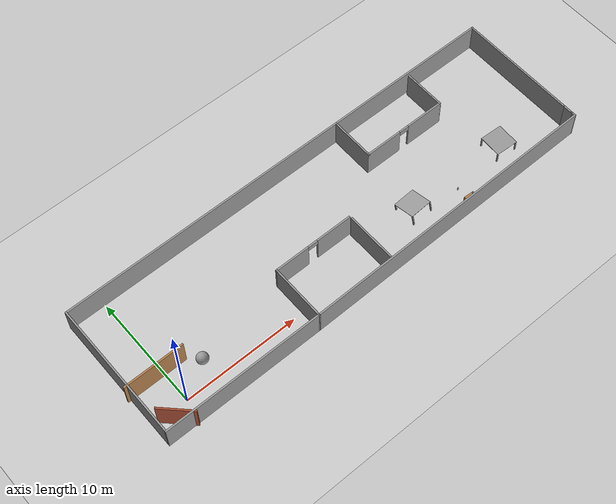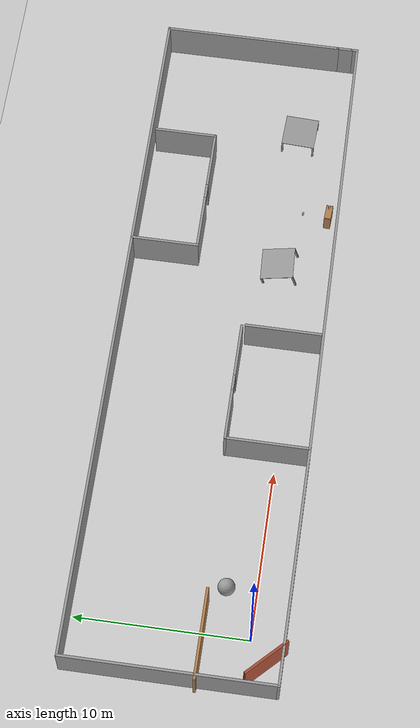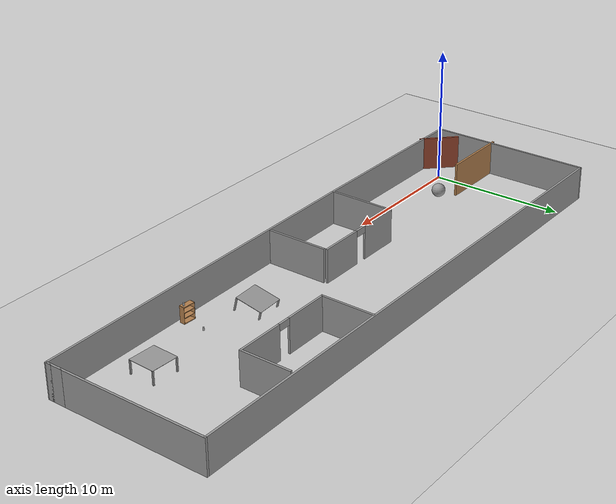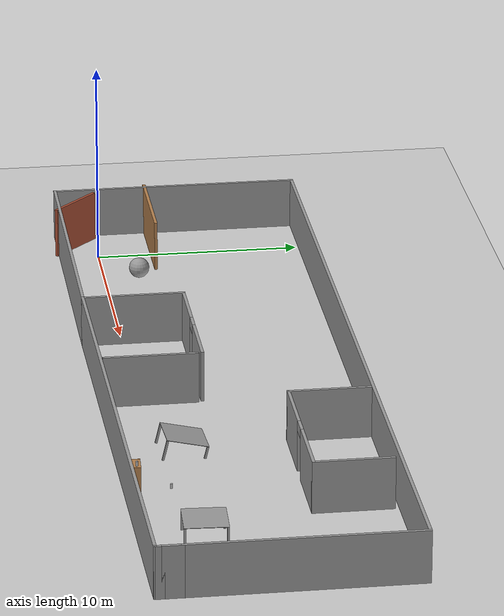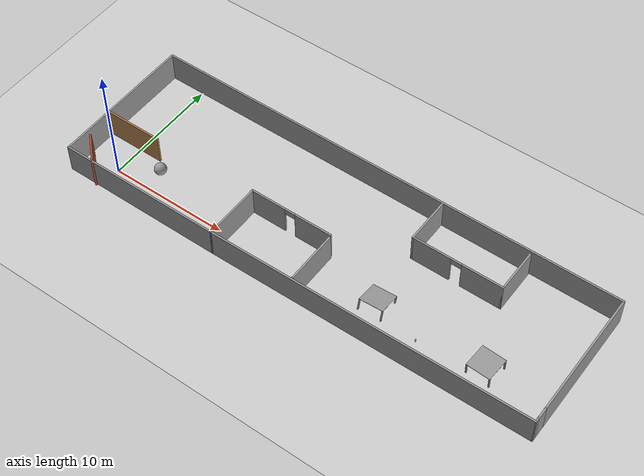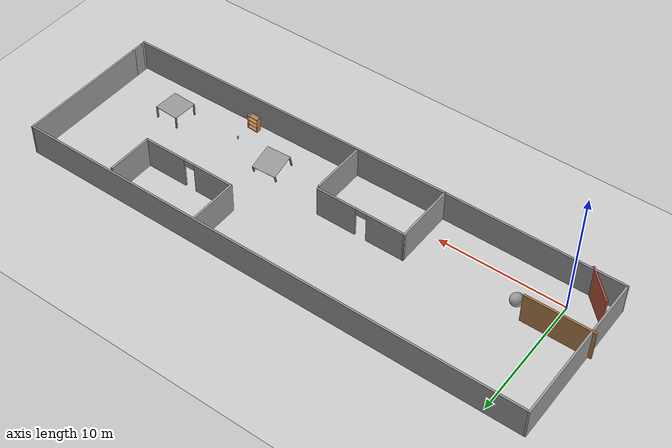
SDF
<sdf version="1.6">
 <world name="default">
  <plugin name="hello" filename="libhello.so"/>
  <light name="sun" type="directional">
   <pose>0 0 10 0 -0 0</pose>
   <diffuse>0.8 0.8 0.8 1</diffuse>
   <specular>0.2 0.2 0.2 1</specular>
   <attenuation>
    <range>1000</range>
    <constant>0.9</constant>
    <linear>0.01</linear>
    <quadratic>0.001</quadratic>
   </attenuation>
   <direction>-0.5 0.1 -0.9</direction>
  </light>
  <model name="ground_plane">
   <static>1</static>
   <link name="link">
    <collision name="collision">
     <geometry><plane><normal>0 0 1</normal><size>100 100</size></plane></geometry>
     <surface>
      <contact><collide_bitmask>65535</collide_bitmask></contact>
      <friction><ode><mu>100</mu><mu2>50</mu2></ode></friction>
     </surface>
    </collision>
    <visual name="visual">
     <cast_shadows>0</cast_shadows>
     <geometry><plane><normal>0 0 1</normal><size>100 100</size></plane></geometry>
     <material>
      <script><uri>file://media/materials/scripts/gazebo.material</uri><name>Gazebo/Grey</name></script>
     </material>
    </visual>
   </link>
  </model>
  <gravity>0 0 -9.8</gravity>
  <magnetic_field>6e-06 2.3e-05 -4.2e-05</magnetic_field>
  <atmosphere type="adiabatic"/>
  <physics name="default_physics" default="0" type="ode">
   <max_step_size>0.001</max_step_size>
   <real_time_factor>1</real_time_factor>
   <real_time_update_rate>1000</real_time_update_rate>
  </physics>
  <scene><ambient>0.4 0.4 0.4 1</ambient><background>0.7 0.7 0.7 1</background><shadows>1</shadows></scene>
  <spherical_coordinates>
   <surface_model>EARTH_WGS84</surface_model>
   <latitude_deg>0</latitude_deg>
   <longitude_deg>0</longitude_deg>
   <elevation>0</elevation>
   <heading_deg>0</heading_deg>
  </spherical_coordinates>
  <model name="house">
   <pose>17.4454 4.16959 0 0 -0 0</pose>
   <link name="Wall_0">
    <collision name="Wall_0_Collision">
     <geometry><box><size>14 0.15 2.5</size></box></geometry>
     <pose>0 0 1.25 0 -0 0</pose>
    </collision>
    <visual name="Wall_0_Visual">
     <pose>0 0 1.25 0 -0 0</pose>
     <geometry><box><size>14 0.15 2.5</size></box></geometry>
     <material>
      <script><uri>file://media/materials/scripts/gazebo.material</uri><name>Gazebo/Grey</name></script>
      <ambient>1 1 1 1</ambient>
     </material>
     <meta><layer>0</layer></meta>
    </visual>
    <pose>-13.5004 -6.04959 0 0 -0 0</pose>
   </link>
   <link name="Wall_1">
    <collision name="Wall_1_Collision">
     <geometry><box><size>5 0.15 2.5</size></box></geometry>
     <pose>0 0 1.25 0 -0 0</pose>
    </collision>
    <visual name="Wall_1_Visual">
     <pose>0 0 1.25 0 -0 0</pose>
     <geometry><box><size>5 0.15 2.5</size></box></geometry>
     <material>
      <script><uri>file://media/materials/scripts/gazebo.material</uri><name>Gazebo/Grey</name></script>
      <ambient>1 1 1 1</ambient>
     </material>
     <meta><layer>0</layer></meta>
    </visual>
    <pose>-6.57541 -3.62459 0 0 -0 1.5708</pose>
   </link>
   <link name="Wall_11">
    <collision name="Wall_11_Collision">
     <geometry><box><size>4.5 0.15 2.5</size></box></geometry>
     <pose>0 0 1.25 0 -0 0</pose>
    </collision>
    <visual name="Wall_11_Visual">
     <pose>0 0 1.25 0 -0 0</pose>
     <geometry><box><size>4.5 0.15 2.5</size></box></geometry>
     <material>
      <script><uri>file://media/materials/scripts/gazebo.material</uri><name>Gazebo/Grey</name></script>
      <ambient>1 1 1 1</ambient>
     </material>
     <meta><layer>0</layer></meta>
    </visual>
    <pose>0.623938 -3.61704 0 0 0 -1.5708</pose>
   </link>
   <link name="Wall_13">
    <collision name="Wall_13_Collision">
     <geometry><box><size>4 0.15 2.5</size></box></geometry>
     <pose>0 0 1.25 0 -0 0</pose>
    </collision>
    <visual name="Wall_13_Visual">
     <pose>0 0 1.25 0 -0 0</pose>
     <geometry><box><size>4 0.15 2.5</size></box></geometry>
     <material>
      <script><uri>file://media/materials/scripts/gazebo.material</uri><name>Gazebo/Grey</name></script>
      <ambient>1 1 1 1</ambient>
     </material>
     <meta><layer>0</layer></meta>
    </visual>
    <pose>5.45036 4.05823 0 0 0 -1.5708</pose>
   </link>
   <link name="Wall_14">
    <pose>9.25037 2.13323 0 0 -0 0</pose>
    <visual name="Wall_14_Visual_0">
     <pose>-2.20618 0 1.25 0 -0 0</pose>
     <geometry><box><size>3.33764 0.15 2.5</size></box></geometry>
     <material>
      <script><uri>file://media/materials/scripts/gazebo.material</uri><name>Gazebo/Grey</name></script>
      <ambient>1 1 1 1</ambient>
     </material>
     <meta><layer>0</layer></meta>
    </visual>
    <collision name="Wall_14_Collision_0">
     <geometry><box><size>3.33764 0.15 2.5</size></box></geometry>
     <pose>-2.20618 0 1.25 0 -0 0</pose>
    </collision>
    <visual name="Wall_14_Visual_1">
     <pose>2.11882 0 1.25 0 -0 0</pose>
     <geometry><box><size>3.51236 0.15 2.5</size></box></geometry>
     <material>
      <script><uri>file://media/materials/scripts/gazebo.material</uri><name>Gazebo/Grey</name></script>
      <ambient>1 1 1 1</ambient>
     </material>
     <meta><layer>0</layer></meta>
    </visual>
    <collision name="Wall_14_Collision_1">
     <geometry><box><size>3.51236 0.15 2.5</size></box></geometry>
     <pose>2.11882 0 1.25 0 -0 0</pose>
    </collision>
    <visual name="Wall_14_Visual_2">
     <pose>-0.087364 0 2.25 0 -0 0</pose>
     <geometry><box><size>0.9 0.15 0.5</size></box></geometry>
     <material>
      <script><uri>file://media/materials/scripts/gazebo.material</uri><name>Gazebo/Grey</name></script>
      <ambient>1 1 1 1</ambient>
     </material>
     <meta><layer>0</layer></meta>
    </visual>
    <collision name="Wall_14_Collision_2">
     <geometry><box><size>0.9 0.15 0.5</size></box></geometry>
     <pose>-0.087364 0 2.25 0 -0 0</pose>
    </collision>
   </link>
   <link name="Wall_15">
    <collision name="Wall_15_Collision">
     <geometry><box><size>3.75 0.15 2.5</size></box></geometry>
     <pose>0 0 1.25 0 -0 0</pose>
    </collision>
    <visual name="Wall_15_Visual">
     <pose>0 0 1.25 0 -0 0</pose>
     <geometry><box><size>3.75 0.15 2.5</size></box></geometry>
     <material>
      <script><uri>file://media/materials/scripts/gazebo.material</uri><name>Gazebo/Grey</name></script>
      <ambient>1 1 1 1</ambient>
     </material>
     <meta><layer>0</layer></meta>
    </visual>
    <pose>13.0504 3.93323 0 0 -0 1.5708</pose>
   </link>
   <link name="Wall_17">
    <pose>-3.02542 -1.19959 0 0 -0 0</pose>
    <visual name="Wall_17_Visual_0">
     <pose>-2.06914 0 1.25 0 -0 0</pose>
     <geometry><box><size>3.11172 0.15 2.5</size></box></geometry>
     <material>
      <script><uri>file://media/materials/scripts/gazebo.material</uri><name>Gazebo/Grey</name></script>
      <ambient>1 1 1 1</ambient>
     </material>
     <meta><layer>0</layer></meta>
    </visual>
    <collision name="Wall_17_Collision_0">
     <geometry><box><size>3.11172 0.15 2.5</size></box></geometry>
     <pose>-2.06914 0 1.25 0 -0 0</pose>
    </collision>
    <visual name="Wall_17_Visual_1">
     <pose>2.00586 0 1.25 0 -0 0</pose>
     <geometry><box><size>3.23828 0.15 2.5</size></box></geometry>
     <material>
      <script><uri>file://media/materials/scripts/gazebo.material</uri><name>Gazebo/Grey</name></script>
      <ambient>1 1 1 1</ambient>
     </material>
     <meta><layer>0</layer></meta>
    </visual>
    <collision name="Wall_17_Collision_1">
     <geometry><box><size>3.23828 0.15 2.5</size></box></geometry>
     <pose>2.00586 0 1.25 0 -0 0</pose>
    </collision>
    <visual name="Wall_17_Visual_2">
     <pose>-0.063283 0 2.25 0 -0 0</pose>
     <geometry><box><size>0.9 0.15 0.5</size></box></geometry>
     <material>
      <script><uri>file://media/materials/scripts/gazebo.material</uri><name>Gazebo/Grey</name></script>
      <ambient>1 1 1 1</ambient>
     </material>
     <meta><layer>0</layer></meta>
    </visual>
    <collision name="Wall_17_Collision_2">
     <geometry><box><size>0.9 0.15 0.5</size></box></geometry>
     <pose>-0.063283 0 2.25 0 -0 0</pose>
    </collision>
   </link>
   <link name="Wall_4">
    <collision name="Wall_4_Collision">
     <geometry><box><size>12.25 0.15 2.5</size></box></geometry>
     <pose>0 0 1.25 0 -0 0</pose>
    </collision>
    <visual name="Wall_4_Visual">
     <pose>0 0 1.25 0 -0 0</pose>
     <geometry><box><size>12.25 0.15 2.5</size></box></geometry>
     <material>
      <script><uri>file://media/materials/scripts/gazebo.material</uri><name>Gazebo/Grey</name></script>
      <ambient>1 1 1 1</ambient>
     </material>
     <meta><layer>0</layer></meta>
    </visual>
    <pose>-20.4254 0.000414 0 0 -0 1.5708</pose>
   </link>
   <link name="Wall_5">
    <collision name="Wall_5_Collision">
     <geometry><box><size>41 0.15 2.5</size></box></geometry>
     <pose>0 0 1.25 0 -0 0</pose>
    </collision>
    <visual name="Wall_5_Visual">
     <pose>0 0 1.25 0 -0 0</pose>
     <geometry><box><size>41 0.15 2.5</size></box></geometry>
     <material>
      <script><uri>file://media/materials/scripts/gazebo.material</uri><name>Gazebo/Grey</name></script>
      <ambient>1 1 1 1</ambient>
     </material>
     <meta><layer>0</layer></meta>
    </visual>
    <pose>-0.000416 6.05041 0 0 -0 0</pose>
   </link>
   <link name="Wall_6">
    <collision name="Wall_6_Collision">
     <geometry><box><size>10.75 0.15 2.5</size></box></geometry>
     <pose>0 0 1.25 0 -0 0</pose>
    </collision>
    <visual name="Wall_6_Visual">
     <pose>0 0 1.25 0 -0 0</pose>
     <geometry><box><size>10.75 0.15 2.5</size></box></geometry>
     <material>
      <script><uri>file://media/materials/scripts/gazebo.material</uri><name>Gazebo/Grey</name></script>
      <ambient>1 1 1 1</ambient>
     </material>
     <meta><layer>0</layer></meta>
    </visual>
    <pose>20.4246 0.750414 0 0 0 -1.5708</pose>
   </link>
   <link name="Wall_7">
    <collision name="Wall_7_Collision">
     <geometry><box><size>1 0.15 2.5</size></box></geometry>
     <pose>0 0 1.25 0 -0 0</pose>
    </collision>
    <visual name="Wall_7_Visual">
     <pose>0 0 1.25 0 -0 0</pose>
     <geometry><box><size>1 0.15 2.5</size></box></geometry>
     <material>
      <script><uri>file://media/materials/scripts/gazebo.material</uri><name>Gazebo/Grey</name></script>
      <ambient>1 1 1 1</ambient>
     </material>
     <meta><layer>0</layer></meta>
    </visual>
    <pose>20.4246 -4.97459 0 0 0 -1.5708</pose>
   </link>
   <link name="Wall_8">
    <collision name="Wall_8_Collision">
     <geometry><box><size>0.5 0.15 2.5</size></box></geometry>
     <pose>0 0 1.25 0 -0 0</pose>
    </collision>
    <visual name="Wall_8_Visual">
     <pose>0 0 1.25 0 -0 0</pose>
     <geometry><box><size>0.5 0.15 2.5</size></box></geometry>
     <material>
      <script><uri>file://media/materials/scripts/gazebo.material</uri><name>Gazebo/Grey</name></script>
      <ambient>1 1 1 1</ambient>
     </material>
     <meta><layer>0</layer></meta>
    </visual>
    <pose>20.4246 -5.57459 0 0 0 -1.5708</pose>
   </link>
   <link name="Wall_9">
    <collision name="Wall_9_Collision">
     <geometry><box><size>27.1517 0.15 2.5</size></box></geometry>
     <pose>0 0 1.25 0 -0 0</pose>
    </collision>
    <visual name="Wall_9_Visual">
     <pose>0 0 1.25 0 -0 0</pose>
     <geometry><box><size>27.1517 0.15 2.5</size></box></geometry>
     <material>
      <script><uri>file://media/materials/scripts/gazebo.material</uri><name>Gazebo/Grey</name></script>
      <ambient>1 1 1 1</ambient>
     </material>
     <meta><layer>0</layer></meta>
    </visual>
    <pose>6.92459 -5.89959 0 0 0 -3.13048</pose>
   </link>
   <static>1</static>
  </model>
  <model name="bookshelf">
   <static>1</static>
   <link name="link">
    <inertial><mass>1</mass></inertial>
    <collision name="back">
     <pose>0 0.005 0.6 0 -0 0</pose>
     <geometry><box><size>0.9 0.01 1.2</size></box></geometry>
    </collision>
    <visual name="visual1">
     <pose>0 0.005 0.6 0 -0 0</pose>
     <geometry><box><size>0.9 0.01 1.2</size></box></geometry>
     <material>
      <script><uri>file://media/materials/scripts/gazebo.material</uri><name>Gazebo/Wood</name></script>
     </material>
    </visual>
    <collision name="left_side">
     <pose>0.45 -0.195 0.6 0 -0 0</pose>
     <geometry><box><size>0.02 0.4 1.2</size></box></geometry>
    </collision>
    <visual name="visual2">
     <pose>0.45 -0.195 0.6 0 -0 0</pose>
     <geometry><box><size>0.02 0.4 1.2</size></box></geometry>
     <material>
      <script><uri>file://media/materials/scripts/gazebo.material</uri><name>Gazebo/Wood</name></script>
     </material>
    </visual>
    <collision name="right_side">
     <pose>-0.45 -0.195 0.6 0 -0 0</pose>
     <geometry><box><size>0.02 0.4 1.2</size></box></geometry>
    </collision>
    <visual name="visual3">
     <pose>-0.45 -0.195 0.6 0 -0 0</pose>
     <geometry><box><size>0.02 0.4 1.2</size></box></geometry>
     <material>
      <script><uri>file://media/materials/scripts/gazebo.material</uri><name>Gazebo/Wood</name></script>
     </material>
    </visual>
    <collision name="bottom">
     <pose>0 -0.195 0.03 0 -0 0</pose>
     <geometry><box><size>0.88 0.4 0.06</size></box></geometry>
    </collision>
    <visual name="visual4">
     <pose>0 -0.195 0.03 0 -0 0</pose>
     <geometry><box><size>0.88 0.4 0.06</size></box></geometry>
     <material>
      <script><uri>file://media/materials/scripts/gazebo.material</uri><name>Gazebo/Wood</name></script>
     </material>
    </visual>
    <collision name="top">
     <pose>0 -0.195 1.19 0 -0 0</pose>
     <geometry><box><size>0.88 0.4 0.02</size></box></geometry>
    </collision>
    <visual name="visual5">
     <pose>0 -0.195 1.19 0 -0 0</pose>
     <geometry><box><size>0.88 0.4 0.02</size></box></geometry>
     <material>
      <script><uri>file://media/materials/scripts/gazebo.material</uri><name>Gazebo/Wood</name></script>
     </material>
    </visual>
    <collision name="low_shelf">
     <pose>0 -0.195 0.43 0 -0 0</pose>
     <geometry><box><size>0.88 0.4 0.02</size></box></geometry>
    </collision>
    <visual name="visual6">
     <pose>0 -0.195 0.43 0 -0 0</pose>
     <geometry><box><size>0.88 0.4 0.02</size></box></geometry>
     <material>
      <script><uri>file://media/materials/scripts/gazebo.material</uri><name>Gazebo/Wood</name></script>
     </material>
    </visual>
    <collision name="high_shelf">
     <pose>0 -0.195 0.8 0 -0 0</pose>
     <geometry><box><size>0.88 0.4 0.02</size></box></geometry>
    </collision>
    <visual name="visual7">
     <pose>0 -0.195 0.8 0 -0 0</pose>
     <geometry><box><size>0.88 0.4 0.02</size></box></geometry>
     <material>
      <script><uri>file://media/materials/scripts/gazebo.material</uri><name>Gazebo/Wood</name></script>
     </material>
    </visual>
   </link>
   <pose>26.9058 -1.33422 0 0 -0 3.07905</pose>
  </model>
  <model name="beer">
   <link name="link">
    <pose>0 0 0.115 0 -0 0</pose>
    <inertial>
     <mass>0.39</mass>
     <inertia><ixx>0.00058</ixx><ixy>0</ixy><ixz>0</ixz><iyy>0.00058</iyy><iyz>0</iyz><izz>0.00019</izz></inertia>
    </inertial>
    <collision name="collision">
     <geometry><cylinder><radius>0.055</radius><length>0.23</length></cylinder></geometry>
    </collision>
    <visual name="visual">
     <geometry><cylinder><radius>0.055</radius><length>0.23</length></cylinder></geometry>
     <material>
      <script>
       <uri>model://beer/materials/scripts</uri>
       <uri>model://beer/materials/textures</uri>
       <name>Beer/Diffuse</name>
      </script>
     </material>
    </visual>
   </link>
   <pose>27.194 0.40875 -3e-06 1e-06 -0 -1.1e-05</pose>
  </model>
  <model name="beer_0">
   <link name="link">
    <pose>0 0 0.115 0 -0 0</pose>
    <inertial>
     <mass>0.39</mass>
     <inertia><ixx>0.00058</ixx><ixy>0</ixy><ixz>0</ixz><iyy>0.00058</iyy><iyz>0</iyz><izz>0.00019</izz></inertia>
    </inertial>
    <collision name="collision">
     <geometry><cylinder><radius>0.055</radius><length>0.23</length></cylinder></geometry>
    </collision>
    <visual name="visual">
     <geometry><cylinder><radius>0.055</radius><length>0.23</length></cylinder></geometry>
     <material>
      <script>
       <uri>model://beer/materials/scripts</uri>
       <uri>model://beer/materials/textures</uri>
       <name>Beer/Diffuse</name>
      </script>
     </material>
    </visual>
   </link>
   <pose>27.1974 -1.14002 1.19999 -1e-06 2.6e-05 0.000166</pose>
  </model>
  <model name="Table">
   <link name="link_0">
    <pose>2e-06 0 0.4 0 -0 0</pose>
    <inertial>
     <mass>1</mass>
     <inertia>
      <ixx>0.166667</ixx>
      <ixy>0</ixy>
      <ixz>0</ixz>
      <iyy>0.166667</iyy>
      <iyz>0</iyz>
      <izz>0.166667</izz>
     </inertia>
    </inertial>
    <visual name="visual">
     <geometry><box><size>2 2 0.02</size></box></geometry>
     <material>
      <lighting>1</lighting>
      <script><uri>file://media/materials/scripts/gazebo.material</uri><name>Gazebo/Grey</name></script>
      <shader type="pixel"><normal_map>__default__</normal_map></shader>
      <ambient>0.3 0.3 0.3 1</ambient>
      <diffuse>0.7 0.7 0.7 1</diffuse>
      <specular>0.01 0.01 0.01 1</specular>
      <emissive>0 0 0 1</emissive>
     </material>
    </visual>
    <collision name="collision">
     <geometry><box><size>2 2 0.02</size></box></geometry>
     <surface>
      <friction>
       <ode><mu>1</mu><mu2>1</mu2><fdir1>0 0 0</fdir1><slip1>0</slip1><slip2>0</slip2></ode>
       <torsional>
        <coefficient>1</coefficient>
        <patch_radius>0</patch_radius>
        <surface_radius>0</surface_radius>
        <use_patch_radius>1</use_patch_radius>
        <ode><slip>0</slip></ode>
       </torsional>
      </friction>
      <bounce><restitution_coefficient>0</restitution_coefficient><threshold>1e+06</threshold></bounce>
      <contact>
       <collide_without_contact>0</collide_without_contact>
       <collide_without_contact_bitmask>1</collide_without_contact_bitmask>
       <collide_bitmask>1</collide_bitmask>
       <ode>
        <soft_cfm>0</soft_cfm>
        <soft_erp>0.2</soft_erp>
        <kp>1e+13</kp>
        <kd>1</kd>
        <max_vel>0.01</max_vel>
        <min_depth>0</min_depth>
       </ode>
       <bullet>
        <split_impulse>1</split_impulse>
        <split_impulse_penetration_threshold>-0.01</split_impulse_penetration_threshold>
        <soft_cfm>0</soft_cfm>
        <soft_erp>0.2</soft_erp>
        <kp>1e+13</kp>
        <kd>1</kd>
       </bullet>
      </contact>
     </surface>
    </collision>
   </link>
   <link name="link_1">
    <pose>-0.949999 -0.95 -0.1 0 -0 0</pose>
    <inertial>
     <mass>1</mass>
     <inertia>
      <ixx>0.166667</ixx>
      <ixy>0</ixy>
      <ixz>0</ixz>
      <iyy>0.166667</iyy>
      <iyz>0</iyz>
      <izz>0.166667</izz>
     </inertia>
    </inertial>
    <visual name="visual">
     <geometry><box><size>0.1 0.1 1</size></box></geometry>
     <material>
      <lighting>1</lighting>
      <script><uri>file://media/materials/scripts/gazebo.material</uri><name>Gazebo/Grey</name></script>
      <shader type="pixel"><normal_map>__default__</normal_map></shader>
      <ambient>0.3 0.3 0.3 1</ambient>
      <diffuse>0.7 0.7 0.7 1</diffuse>
      <specular>0.01 0.01 0.01 1</specular>
      <emissive>0 0 0 1</emissive>
     </material>
    </visual>
    <collision name="collision">
     <geometry><box><size>0.1 0.1 1</size></box></geometry>
     <surface>
      <friction>
       <ode><mu>1</mu><mu2>1</mu2><fdir1>0 0 0</fdir1><slip1>0</slip1><slip2>0</slip2></ode>
       <torsional>
        <coefficient>1</coefficient>
        <patch_radius>0</patch_radius>
        <surface_radius>0</surface_radius>
        <use_patch_radius>1</use_patch_radius>
        <ode><slip>0</slip></ode>
       </torsional>
      </friction>
      <bounce><restitution_coefficient>0</restitution_coefficient><threshold>1e+06</threshold></bounce>
      <contact>
       <collide_without_contact>0</collide_without_contact>
       <collide_without_contact_bitmask>1</collide_without_contact_bitmask>
       <collide_bitmask>1</collide_bitmask>
       <ode>
        <soft_cfm>0</soft_cfm>
        <soft_erp>0.2</soft_erp>
        <kp>1e+13</kp>
        <kd>1</kd>
        <max_vel>0.01</max_vel>
        <min_depth>0</min_depth>
       </ode>
       <bullet>
        <split_impulse>1</split_impulse>
        <split_impulse_penetration_threshold>-0.01</split_impulse_penetration_threshold>
        <soft_cfm>0</soft_cfm>
        <soft_erp>0.2</soft_erp>
        <kp>1e+13</kp>
        <kd>1</kd>
       </bullet>
      </contact>
     </surface>
    </collision>
   </link>
   <link name="link_1_clone">
    <pose>0.950002 -0.95 -0.1 0 -0 0</pose>
    <inertial>
     <mass>1</mass>
     <inertia>
      <ixx>0.166667</ixx>
      <ixy>0</ixy>
      <ixz>0</ixz>
      <iyy>0.166667</iyy>
      <iyz>0</iyz>
      <izz>0.166667</izz>
     </inertia>
    </inertial>
    <visual name="visual">
     <geometry><box><size>0.1 0.1 1</size></box></geometry>
     <material>
      <lighting>1</lighting>
      <script><uri>file://media/materials/scripts/gazebo.material</uri><name>Gazebo/Grey</name></script>
      <shader type="pixel"><normal_map>__default__</normal_map></shader>
      <ambient>0.3 0.3 0.3 1</ambient>
      <diffuse>0.7 0.7 0.7 1</diffuse>
      <specular>0.01 0.01 0.01 1</specular>
      <emissive>0 0 0 1</emissive>
     </material>
    </visual>
    <collision name="collision">
     <geometry><box><size>0.1 0.1 1</size></box></geometry>
     <surface>
      <friction>
       <ode><mu>1</mu><mu2>1</mu2><fdir1>0 0 0</fdir1><slip1>0</slip1><slip2>0</slip2></ode>
       <torsional>
        <coefficient>1</coefficient>
        <patch_radius>0</patch_radius>
        <surface_radius>0</surface_radius>
        <use_patch_radius>1</use_patch_radius>
        <ode><slip>0</slip></ode>
       </torsional>
      </friction>
      <bounce><restitution_coefficient>0</restitution_coefficient><threshold>1e+06</threshold></bounce>
      <contact>
       <collide_without_contact>0</collide_without_contact>
       <collide_without_contact_bitmask>1</collide_without_contact_bitmask>
       <collide_bitmask>1</collide_bitmask>
       <ode>
        <soft_cfm>0</soft_cfm>
        <soft_erp>0.2</soft_erp>
        <kp>1e+13</kp>
        <kd>1</kd>
        <max_vel>0.01</max_vel>
        <min_depth>0</min_depth>
       </ode>
       <bullet>
        <split_impulse>1</split_impulse>
        <split_impulse_penetration_threshold>-0.01</split_impulse_penetration_threshold>
        <soft_cfm>0</soft_cfm>
        <soft_erp>0.2</soft_erp>
        <kp>1e+13</kp>
        <kd>1</kd>
       </bullet>
      </contact>
     </surface>
    </collision>
   </link>
   <link name="link_1_clone_0">
    <pose>-0.949999 0.95 -0.1 0 -0 0</pose>
    <inertial>
     <mass>1</mass>
     <inertia>
      <ixx>0.166667</ixx>
      <ixy>0</ixy>
      <ixz>0</ixz>
      <iyy>0.166667</iyy>
      <iyz>0</iyz>
      <izz>0.166667</izz>
     </inertia>
    </inertial>
    <visual name="visual">
     <geometry><box><size>0.1 0.1 1</size></box></geometry>
     <material>
      <lighting>1</lighting>
      <script><uri>file://media/materials/scripts/gazebo.material</uri><name>Gazebo/Grey</name></script>
      <shader type="pixel"><normal_map>__default__</normal_map></shader>
      <ambient>0.3 0.3 0.3 1</ambient>
      <diffuse>0.7 0.7 0.7 1</diffuse>
      <specular>0.01 0.01 0.01 1</specular>
      <emissive>0 0 0 1</emissive>
     </material>
    </visual>
    <collision name="collision">
     <geometry><box><size>0.1 0.1 1</size></box></geometry>
     <surface>
      <friction>
       <ode><mu>1</mu><mu2>1</mu2><fdir1>0 0 0</fdir1><slip1>0</slip1><slip2>0</slip2></ode>
       <torsional>
        <coefficient>1</coefficient>
        <patch_radius>0</patch_radius>
        <surface_radius>0</surface_radius>
        <use_patch_radius>1</use_patch_radius>
        <ode><slip>0</slip></ode>
       </torsional>
      </friction>
      <bounce><restitution_coefficient>0</restitution_coefficient><threshold>1e+06</threshold></bounce>
      <contact>
       <collide_without_contact>0</collide_without_contact>
       <collide_without_contact_bitmask>1</collide_without_contact_bitmask>
       <collide_bitmask>1</collide_bitmask>
       <ode>
        <soft_cfm>0</soft_cfm>
        <soft_erp>0.2</soft_erp>
        <kp>1e+13</kp>
        <kd>1</kd>
        <max_vel>0.01</max_vel>
        <min_depth>0</min_depth>
       </ode>
       <bullet>
        <split_impulse>1</split_impulse>
        <split_impulse_penetration_threshold>-0.01</split_impulse_penetration_threshold>
        <soft_cfm>0</soft_cfm>
        <soft_erp>0.2</soft_erp>
        <kp>1e+13</kp>
        <kd>1</kd>
       </bullet>
      </contact>
     </surface>
    </collision>
   </link>
   <link name="link_1_clone_1">
    <pose>0.950002 0.95 -0.1 0 -0 0</pose>
    <inertial>
     <mass>1</mass>
     <inertia>
      <ixx>0.166667</ixx>
      <ixy>0</ixy>
      <ixz>0</ixz>
      <iyy>0.166667</iyy>
      <iyz>0</iyz>
      <izz>0.166667</izz>
     </inertia>
    </inertial>
    <visual name="visual">
     <geometry><box><size>0.1 0.1 1</size></box></geometry>
     <material>
      <lighting>1</lighting>
      <script><uri>file://media/materials/scripts/gazebo.material</uri><name>Gazebo/Grey</name></script>
      <shader type="pixel"><normal_map>__default__</normal_map></shader>
      <ambient>0.3 0.3 0.3 1</ambient>
      <diffuse>0.7 0.7 0.7 1</diffuse>
      <specular>0.01 0.01 0.01 1</specular>
      <emissive>0 0 0 1</emissive>
     </material>
    </visual>
    <collision name="collision">
     <geometry><box><size>0.1 0.1 1</size></box></geometry>
     <surface>
      <friction>
       <ode><mu>1</mu><mu2>1</mu2><fdir1>0 0 0</fdir1><slip1>0</slip1><slip2>0</slip2></ode>
       <torsional>
        <coefficient>1</coefficient>
        <patch_radius>0</patch_radius>
        <surface_radius>0</surface_radius>
        <use_patch_radius>1</use_patch_radius>
        <ode><slip>0</slip></ode>
       </torsional>
      </friction>
      <bounce><restitution_coefficient>0</restitution_coefficient><threshold>1e+06</threshold></bounce>
      <contact>
       <collide_without_contact>0</collide_without_contact>
       <collide_without_contact_bitmask>1</collide_without_contact_bitmask>
       <collide_bitmask>1</collide_bitmask>
       <ode>
        <soft_cfm>0</soft_cfm>
        <soft_erp>0.2</soft_erp>
        <kp>1e+13</kp>
        <kd>1</kd>
        <max_vel>0.01</max_vel>
        <min_depth>0</min_depth>
       </ode>
       <bullet>
        <split_impulse>1</split_impulse>
        <split_impulse_penetration_threshold>-0.01</split_impulse_penetration_threshold>
        <soft_cfm>0</soft_cfm>
        <soft_erp>0.2</soft_erp>
        <kp>1e+13</kp>
        <kd>1</kd>
       </bullet>
      </contact>
     </surface>
    </collision>
   </link>
   <joint name="link_0_JOINT_2" type="revolute">
    <parent>link_0</parent>
    <child>link_1</child>
    <pose>0 0 0 0 -0.08 0</pose>
    <axis>
     <xyz>0 0 1</xyz>
     <use_parent_model_frame>0</use_parent_model_frame>
     <limit>
      <lower>-1.79769e+308</lower>
      <upper>1.79769e+308</upper>
      <effort>-1</effort>
      <velocity>-1</velocity>
     </limit>
     <dynamics>
      <spring_reference>0</spring_reference>
      <spring_stiffness>0</spring_stiffness>
      <damping>0</damping>
     </dynamics>
    </axis>
    <physics>
     <ode><limit><cfm>0</cfm><erp>0.2</erp></limit><suspension><cfm>0</cfm><erp>0.2</erp></suspension></ode>
    </physics>
   </joint>
   <joint name="link_0_JOINT_3" type="revolute">
    <parent>link_0</parent>
    <child>link_1_clone</child>
    <axis>
     <xyz>1 0 0</xyz>
     <use_parent_model_frame>0</use_parent_model_frame>
     <limit>
      <lower>-1.79769e+308</lower>
      <upper>1.79769e+308</upper>
      <effort>-1</effort>
      <velocity>-1</velocity>
     </limit>
     <dynamics>
      <spring_reference>0</spring_reference>
      <spring_stiffness>0</spring_stiffness>
      <damping>0</damping>
     </dynamics>
    </axis>
    <physics>
     <ode><limit><cfm>0</cfm><erp>0.2</erp></limit><suspension><cfm>0</cfm><erp>0.2</erp></suspension></ode>
    </physics>
   </joint>
   <joint name="link_0_JOINT_4" type="revolute">
    <parent>link_0</parent>
    <child>link_1_clone_1</child>
    <axis>
     <xyz>1 0 0</xyz>
     <use_parent_model_frame>0</use_parent_model_frame>
     <limit>
      <lower>-1.79769e+308</lower>
      <upper>1.79769e+308</upper>
      <effort>-1</effort>
      <velocity>-1</velocity>
     </limit>
     <dynamics>
      <spring_reference>0</spring_reference>
      <spring_stiffness>0</spring_stiffness>
      <damping>0</damping>
     </dynamics>
    </axis>
    <physics>
     <ode><limit><cfm>0</cfm><erp>0.2</erp></limit><suspension><cfm>0</cfm><erp>0.2</erp></suspension></ode>
    </physics>
   </joint>
   <joint name="link_0_JOINT_5" type="revolute">
    <parent>link_0</parent>
    <child>link_1_clone_0</child>
    <axis>
     <xyz>1 0 0</xyz>
     <use_parent_model_frame>0</use_parent_model_frame>
     <limit>
      <lower>-1.79769e+308</lower>
      <upper>1.79769e+308</upper>
      <effort>-1</effort>
      <velocity>-1</velocity>
     </limit>
     <dynamics>
      <spring_reference>0</spring_reference>
      <spring_stiffness>0</spring_stiffness>
      <damping>0</damping>
     </dynamics>
    </axis>
    <physics>
     <ode><limit><cfm>0</cfm><erp>0.2</erp></limit><suspension><cfm>0</cfm><erp>0.2</erp></suspension></ode>
    </physics>
   </joint>
   <static>0</static>
   <pose>32.4191 1.25106 0.601296 0.00028 -0.001028 -0.049059</pose>
  </model>
  <model name="Table_clone">
   <link name="link_0">
    <pose>2e-06 0 0.4 0 -0 0</pose>
    <inertial>
     <mass>1</mass>
     <inertia>
      <ixx>0.166667</ixx>
      <ixy>0</ixy>
      <ixz>0</ixz>
      <iyy>0.166667</iyy>
      <iyz>0</iyz>
      <izz>0.166667</izz>
     </inertia>
    </inertial>
    <visual name="visual">
     <geometry><box><size>2 2 0.02</size></box></geometry>
     <material>
      <lighting>1</lighting>
      <script><uri>file://media/materials/scripts/gazebo.material</uri><name>Gazebo/Grey</name></script>
      <shader type="pixel"><normal_map>__default__</normal_map></shader>
      <ambient>0.3 0.3 0.3 1</ambient>
      <diffuse>0.7 0.7 0.7 1</diffuse>
      <specular>0.01 0.01 0.01 1</specular>
      <emissive>0 0 0 1</emissive>
     </material>
    </visual>
    <collision name="collision">
     <geometry><box><size>2 2 0.02</size></box></geometry>
     <surface>
      <friction>
       <ode><mu>1</mu><mu2>1</mu2><fdir1>0 0 0</fdir1><slip1>0</slip1><slip2>0</slip2></ode>
       <torsional>
        <coefficient>1</coefficient>
        <patch_radius>0</patch_radius>
        <surface_radius>0</surface_radius>
        <use_patch_radius>1</use_patch_radius>
        <ode><slip>0</slip></ode>
       </torsional>
      </friction>
      <bounce><restitution_coefficient>0</restitution_coefficient><threshold>1e+06</threshold></bounce>
      <contact>
       <collide_without_contact>0</collide_without_contact>
       <collide_without_contact_bitmask>1</collide_without_contact_bitmask>
       <collide_bitmask>1</collide_bitmask>
       <ode>
        <soft_cfm>0</soft_cfm>
        <soft_erp>0.2</soft_erp>
        <kp>1e+13</kp>
        <kd>1</kd>
        <max_vel>0.01</max_vel>
        <min_depth>0</min_depth>
       </ode>
       <bullet>
        <split_impulse>1</split_impulse>
        <split_impulse_penetration_threshold>-0.01</split_impulse_penetration_threshold>
        <soft_cfm>0</soft_cfm>
        <soft_erp>0.2</soft_erp>
        <kp>1e+13</kp>
        <kd>1</kd>
       </bullet>
      </contact>
     </surface>
    </collision>
   </link>
   <link name="link_1">
    <pose>-0.949999 -0.95 -0.1 0 -0 0</pose>
    <inertial>
     <mass>1</mass>
     <inertia>
      <ixx>0.166667</ixx>
      <ixy>0</ixy>
      <ixz>0</ixz>
      <iyy>0.166667</iyy>
      <iyz>0</iyz>
      <izz>0.166667</izz>
     </inertia>
    </inertial>
    <visual name="visual">
     <geometry><box><size>0.1 0.1 1</size></box></geometry>
     <material>
      <lighting>1</lighting>
      <script><uri>file://media/materials/scripts/gazebo.material</uri><name>Gazebo/Grey</name></script>
      <shader type="pixel"><normal_map>__default__</normal_map></shader>
      <ambient>0.3 0.3 0.3 1</ambient>
      <diffuse>0.7 0.7 0.7 1</diffuse>
      <specular>0.01 0.01 0.01 1</specular>
      <emissive>0 0 0 1</emissive>
     </material>
    </visual>
    <collision name="collision">
     <geometry><box><size>0.1 0.1 1</size></box></geometry>
     <surface>
      <friction>
       <ode><mu>1</mu><mu2>1</mu2><fdir1>0 0 0</fdir1><slip1>0</slip1><slip2>0</slip2></ode>
       <torsional>
        <coefficient>1</coefficient>
        <patch_radius>0</patch_radius>
        <surface_radius>0</surface_radius>
        <use_patch_radius>1</use_patch_radius>
        <ode><slip>0</slip></ode>
       </torsional>
      </friction>
      <bounce><restitution_coefficient>0</restitution_coefficient><threshold>1e+06</threshold></bounce>
      <contact>
       <collide_without_contact>0</collide_without_contact>
       <collide_without_contact_bitmask>1</collide_without_contact_bitmask>
       <collide_bitmask>1</collide_bitmask>
       <ode>
        <soft_cfm>0</soft_cfm>
        <soft_erp>0.2</soft_erp>
        <kp>1e+13</kp>
        <kd>1</kd>
        <max_vel>0.01</max_vel>
        <min_depth>0</min_depth>
       </ode>
       <bullet>
        <split_impulse>1</split_impulse>
        <split_impulse_penetration_threshold>-0.01</split_impulse_penetration_threshold>
        <soft_cfm>0</soft_cfm>
        <soft_erp>0.2</soft_erp>
        <kp>1e+13</kp>
        <kd>1</kd>
       </bullet>
      </contact>
     </surface>
    </collision>
   </link>
   <link name="link_1_clone">
    <pose>0.950002 -0.95 -0.1 0 -0 0</pose>
    <inertial>
     <mass>1</mass>
     <inertia>
      <ixx>0.166667</ixx>
      <ixy>0</ixy>
      <ixz>0</ixz>
      <iyy>0.166667</iyy>
      <iyz>0</iyz>
      <izz>0.166667</izz>
     </inertia>
    </inertial>
    <visual name="visual">
     <geometry><box><size>0.1 0.1 1</size></box></geometry>
     <material>
      <lighting>1</lighting>
      <script><uri>file://media/materials/scripts/gazebo.material</uri><name>Gazebo/Grey</name></script>
      <shader type="pixel"><normal_map>__default__</normal_map></shader>
      <ambient>0.3 0.3 0.3 1</ambient>
      <diffuse>0.7 0.7 0.7 1</diffuse>
      <specular>0.01 0.01 0.01 1</specular>
      <emissive>0 0 0 1</emissive>
     </material>
    </visual>
    <collision name="collision">
     <geometry><box><size>0.1 0.1 1</size></box></geometry>
     <surface>
      <friction>
       <ode><mu>1</mu><mu2>1</mu2><fdir1>0 0 0</fdir1><slip1>0</slip1><slip2>0</slip2></ode>
       <torsional>
        <coefficient>1</coefficient>
        <patch_radius>0</patch_radius>
        <surface_radius>0</surface_radius>
        <use_patch_radius>1</use_patch_radius>
        <ode><slip>0</slip></ode>
       </torsional>
      </friction>
      <bounce><restitution_coefficient>0</restitution_coefficient><threshold>1e+06</threshold></bounce>
      <contact>
       <collide_without_contact>0</collide_without_contact>
       <collide_without_contact_bitmask>1</collide_without_contact_bitmask>
       <collide_bitmask>1</collide_bitmask>
       <ode>
        <soft_cfm>0</soft_cfm>
        <soft_erp>0.2</soft_erp>
        <kp>1e+13</kp>
        <kd>1</kd>
        <max_vel>0.01</max_vel>
        <min_depth>0</min_depth>
       </ode>
       <bullet>
        <split_impulse>1</split_impulse>
        <split_impulse_penetration_threshold>-0.01</split_impulse_penetration_threshold>
        <soft_cfm>0</soft_cfm>
        <soft_erp>0.2</soft_erp>
        <kp>1e+13</kp>
        <kd>1</kd>
       </bullet>
      </contact>
     </surface>
    </collision>
   </link>
   <link name="link_1_clone_0">
    <pose>-0.949999 0.95 -0.1 0 -0 0</pose>
    <inertial>
     <mass>1</mass>
     <inertia>
      <ixx>0.166667</ixx>
      <ixy>0</ixy>
      <ixz>0</ixz>
      <iyy>0.166667</iyy>
      <iyz>0</iyz>
      <izz>0.166667</izz>
     </inertia>
    </inertial>
    <visual name="visual">
     <geometry><box><size>0.1 0.1 1</size></box></geometry>
     <material>
      <lighting>1</lighting>
      <script><uri>file://media/materials/scripts/gazebo.material</uri><name>Gazebo/Grey</name></script>
      <shader type="pixel"><normal_map>__default__</normal_map></shader>
      <ambient>0.3 0.3 0.3 1</ambient>
      <diffuse>0.7 0.7 0.7 1</diffuse>
      <specular>0.01 0.01 0.01 1</specular>
      <emissive>0 0 0 1</emissive>
     </material>
    </visual>
    <collision name="collision">
     <geometry><box><size>0.1 0.1 1</size></box></geometry>
     <surface>
      <friction>
       <ode><mu>1</mu><mu2>1</mu2><fdir1>0 0 0</fdir1><slip1>0</slip1><slip2>0</slip2></ode>
       <torsional>
        <coefficient>1</coefficient>
        <patch_radius>0</patch_radius>
        <surface_radius>0</surface_radius>
        <use_patch_radius>1</use_patch_radius>
        <ode><slip>0</slip></ode>
       </torsional>
      </friction>
      <bounce><restitution_coefficient>0</restitution_coefficient><threshold>1e+06</threshold></bounce>
      <contact>
       <collide_without_contact>0</collide_without_contact>
       <collide_without_contact_bitmask>1</collide_without_contact_bitmask>
       <collide_bitmask>1</collide_bitmask>
       <ode>
        <soft_cfm>0</soft_cfm>
        <soft_erp>0.2</soft_erp>
        <kp>1e+13</kp>
        <kd>1</kd>
        <max_vel>0.01</max_vel>
        <min_depth>0</min_depth>
       </ode>
       <bullet>
        <split_impulse>1</split_impulse>
        <split_impulse_penetration_threshold>-0.01</split_impulse_penetration_threshold>
        <soft_cfm>0</soft_cfm>
        <soft_erp>0.2</soft_erp>
        <kp>1e+13</kp>
        <kd>1</kd>
       </bullet>
      </contact>
     </surface>
    </collision>
   </link>
   <link name="link_1_clone_1">
    <pose>0.950002 0.95 -0.1 0 -0 0</pose>
    <inertial>
     <mass>1</mass>
     <inertia>
      <ixx>0.166667</ixx>
      <ixy>0</ixy>
      <ixz>0</ixz>
      <iyy>0.166667</iyy>
      <iyz>0</iyz>
      <izz>0.166667</izz>
     </inertia>
    </inertial>
    <visual name="visual">
     <geometry><box><size>0.1 0.1 1</size></box></geometry>
     <material>
      <lighting>1</lighting>
      <script><uri>file://media/materials/scripts/gazebo.material</uri><name>Gazebo/Grey</name></script>
      <shader type="pixel"><normal_map>__default__</normal_map></shader>
      <ambient>0.3 0.3 0.3 1</ambient>
      <diffuse>0.7 0.7 0.7 1</diffuse>
      <specular>0.01 0.01 0.01 1</specular>
      <emissive>0 0 0 1</emissive>
     </material>
    </visual>
    <collision name="collision">
     <geometry><box><size>0.1 0.1 1</size></box></geometry>
     <surface>
      <friction>
       <ode><mu>1</mu><mu2>1</mu2><fdir1>0 0 0</fdir1><slip1>0</slip1><slip2>0</slip2></ode>
       <torsional>
        <coefficient>1</coefficient>
        <patch_radius>0</patch_radius>
        <surface_radius>0</surface_radius>
        <use_patch_radius>1</use_patch_radius>
        <ode><slip>0</slip></ode>
       </torsional>
      </friction>
      <bounce><restitution_coefficient>0</restitution_coefficient><threshold>1e+06</threshold></bounce>
      <contact>
       <collide_without_contact>0</collide_without_contact>
       <collide_without_contact_bitmask>1</collide_without_contact_bitmask>
       <collide_bitmask>1</collide_bitmask>
       <ode>
        <soft_cfm>0</soft_cfm>
        <soft_erp>0.2</soft_erp>
        <kp>1e+13</kp>
        <kd>1</kd>
        <max_vel>0.01</max_vel>
        <min_depth>0</min_depth>
       </ode>
       <bullet>
        <split_impulse>1</split_impulse>
        <split_impulse_penetration_threshold>-0.01</split_impulse_penetration_threshold>
        <soft_cfm>0</soft_cfm>
        <soft_erp>0.2</soft_erp>
        <kp>1e+13</kp>
        <kd>1</kd>
       </bullet>
      </contact>
     </surface>
    </collision>
   </link>
   <joint name="link_0_JOINT_2" type="revolute">
    <parent>link_0</parent>
    <child>link_1</child>
    <pose>0 0 0 0 -0.08 0</pose>
    <axis>
     <xyz>0 0 1</xyz>
     <use_parent_model_frame>0</use_parent_model_frame>
     <limit>
      <lower>-1.79769e+308</lower>
      <upper>1.79769e+308</upper>
      <effort>-1</effort>
      <velocity>-1</velocity>
     </limit>
     <dynamics>
      <spring_reference>0</spring_reference>
      <spring_stiffness>0</spring_stiffness>
      <damping>0</damping>
     </dynamics>
    </axis>
    <physics>
     <ode><limit><cfm>0</cfm><erp>0.2</erp></limit><suspension><cfm>0</cfm><erp>0.2</erp></suspension></ode>
    </physics>
   </joint>
   <joint name="link_0_JOINT_3" type="revolute">
    <parent>link_0</parent>
    <child>link_1_clone</child>
    <axis>
     <xyz>1 0 0</xyz>
     <use_parent_model_frame>0</use_parent_model_frame>
     <limit>
      <lower>-1.79769e+308</lower>
      <upper>1.79769e+308</upper>
      <effort>-1</effort>
      <velocity>-1</velocity>
     </limit>
     <dynamics>
      <spring_reference>0</spring_reference>
      <spring_stiffness>0</spring_stiffness>
      <damping>0</damping>
     </dynamics>
    </axis>
    <physics>
     <ode><limit><cfm>0</cfm><erp>0.2</erp></limit><suspension><cfm>0</cfm><erp>0.2</erp></suspension></ode>
    </physics>
   </joint>
   <joint name="link_0_JOINT_4" type="revolute">
    <parent>link_0</parent>
    <child>link_1_clone_1</child>
    <axis>
     <xyz>1 0 0</xyz>
     <use_parent_model_frame>0</use_parent_model_frame>
     <limit>
      <lower>-1.79769e+308</lower>
      <upper>1.79769e+308</upper>
      <effort>-1</effort>
      <velocity>-1</velocity>
     </limit>
     <dynamics>
      <spring_reference>0</spring_reference>
      <spring_stiffness>0</spring_stiffness>
      <damping>0</damping>
     </dynamics>
    </axis>
    <physics>
     <ode><limit><cfm>0</cfm><erp>0.2</erp></limit><suspension><cfm>0</cfm><erp>0.2</erp></suspension></ode>
    </physics>
   </joint>
   <joint name="link_0_JOINT_5" type="revolute">
    <parent>link_0</parent>
    <child>link_1_clone_0</child>
    <axis>
     <xyz>1 0 0</xyz>
     <use_parent_model_frame>0</use_parent_model_frame>
     <limit>
      <lower>-1.79769e+308</lower>
      <upper>1.79769e+308</upper>
      <effort>-1</effort>
      <velocity>-1</velocity>
     </limit>
     <dynamics>
      <spring_reference>0</spring_reference>
      <spring_stiffness>0</spring_stiffness>
      <damping>0</damping>
     </dynamics>
    </axis>
    <physics>
     <ode><limit><cfm>0</cfm><erp>0.2</erp></limit><suspension><cfm>0</cfm><erp>0.2</erp></suspension></ode>
    </physics>
   </joint>
   <static>0</static>
   <pose>23.2526 1.38735 0.371797 -0.238724 -3e-06 0.049831</pose>
  </model>
  <model name="Addons">
   <pose>-0.673656 0.31652 0 0 -0 0</pose>
   <link name="Wall_0">
    <collision name="Wall_0_Collision">
     <geometry><box><size>3 0.15 2.5</size></box></geometry>
     <pose>0 0 1.25 0 -0 0</pose>
    </collision>
    <visual name="Wall_0_Visual">
     <pose>0 0 1.25 0 -0 0</pose>
     <geometry><box><size>3 0.15 2.5</size></box></geometry>
     <material>
      <script><uri>file://media/materials/scripts/gazebo.material</uri><name>Gazebo/Bricks</name></script>
      <ambient>0.435294 0.796078 0.67451 1</ambient>
     </material>
     <meta><layer>0</layer></meta>
    </visual>
    <pose>-0.813974 -1.32889 0 0 -0 2.35619</pose>
   </link>
   <link name="Wall_2">
    <collision name="Wall_2_Collision">
     <geometry><box><size>5.25 0.15 2.5</size></box></geometry>
     <pose>0 0 1.25 0 -0 0</pose>
    </collision>
    <visual name="Wall_2_Visual">
     <pose>0 0 1.25 0 -0 0</pose>
     <geometry><box><size>5.25 0.15 2.5</size></box></geometry>
     <material>
      <script><uri>file://media/materials/scripts/gazebo.material</uri><name>Gazebo/Wood</name></script>
      <ambient>1 1 1 1</ambient>
     </material>
     <meta><layer>0</layer></meta>
    </visual>
    <pose>0 2.36759 0 0 -0 0</pose>
   </link>
   <static>1</static>
  </model>
  <model name="my_ball">
   <link name="link_0">
    <inertial>
     <mass>1</mass>
     <inertia><ixx>0.1</ixx><ixy>0</ixy><ixz>0</ixz><iyy>0.1</iyy><iyz>0</iyz><izz>0.1</izz></inertia>
    </inertial>
    <visual name="visual">
     <geometry><sphere><radius>0.5</radius></sphere></geometry>
     <material>
      <lighting>0</lighting>
      <script><uri>file://media/materials/scripts/gazebo.material</uri><name>Gazebo/Grey</name></script>
      <shader type="pixel"><normal_map>__default__</normal_map></shader>
      <ambient>1 1 1 1</ambient>
      <diffuse>1 1 1 1</diffuse>
      <specular>1 1 1 1</specular>
      <emissive>1 1 1 1</emissive>
     </material>
    </visual>
    <collision name="collision">
     <geometry><sphere><radius>0.5</radius></sphere></geometry>
     <surface>
      <friction>
       <ode><mu>1</mu><mu2>1</mu2><fdir1>0 0 0</fdir1><slip1>0</slip1><slip2>0</slip2></ode>
       <torsional>
        <coefficient>1</coefficient>
        <patch_radius>0</patch_radius>
        <surface_radius>0</surface_radius>
        <use_patch_radius>1</use_patch_radius>
        <ode><slip>0</slip></ode>
       </torsional>
      </friction>
      <bounce><restitution_coefficient>0</restitution_coefficient><threshold>1e+06</threshold></bounce>
      <contact>
       <collide_without_contact>0</collide_without_contact>
       <collide_without_contact_bitmask>1</collide_without_contact_bitmask>
       <collide_bitmask>1</collide_bitmask>
       <ode>
        <soft_cfm>0</soft_cfm>
        <soft_erp>0.2</soft_erp>
        <kp>1e+13</kp>
        <kd>1</kd>
        <max_vel>0.01</max_vel>
        <min_depth>0</min_depth>
       </ode>
       <bullet>
        <split_impulse>1</split_impulse>
        <split_impulse_penetration_threshold>-0.01</split_impulse_penetration_threshold>
        <soft_cfm>0</soft_cfm>
        <soft_erp>0.2</soft_erp>
        <kp>1e+13</kp>
        <kd>1</kd>
       </bullet>
      </contact>
     </surface>
    </collision>
   </link>
   <static>0</static>
   <pose>2.77226 1.74203 0.5 0 -0 0</pose>
  </model>
 </world>
</sdf>
